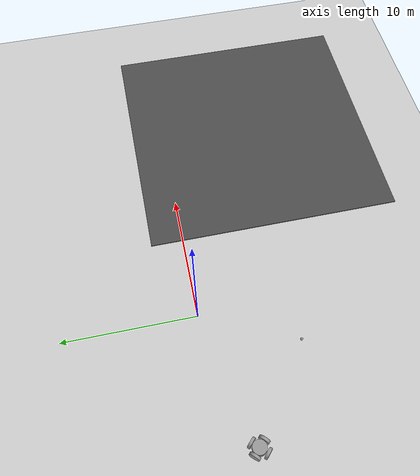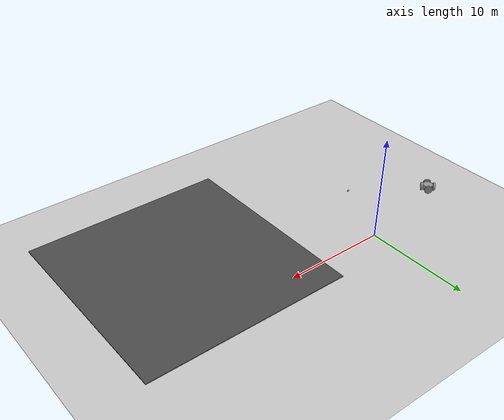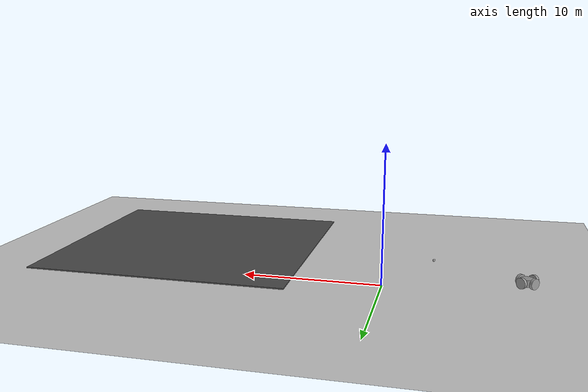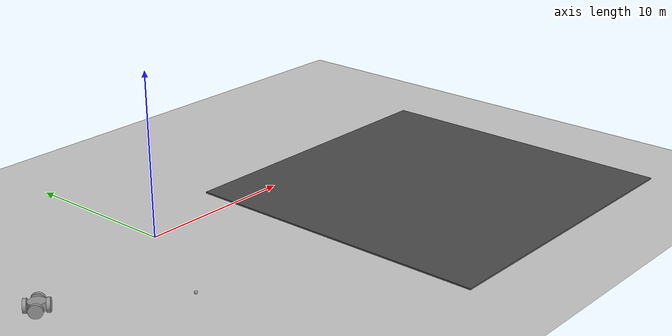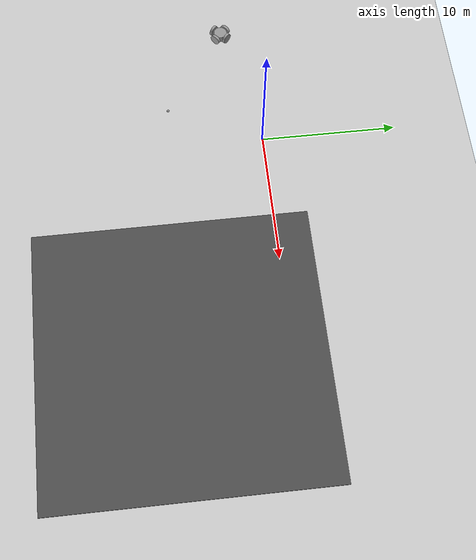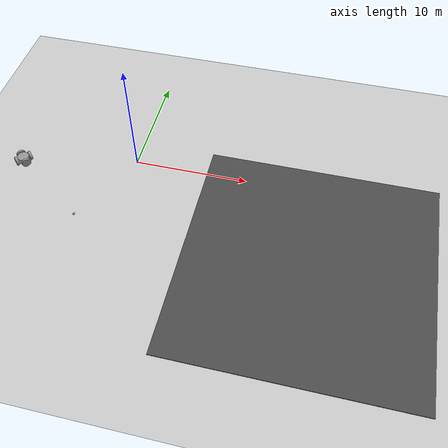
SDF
<sdf version="1.6">
 <world name="default">
  <model name="ground_plane">
   <static>1</static>
   <link name="link">
    <collision name="collision">
     <geometry><plane><normal>0 0 1</normal><size>100 100</size></plane></geometry>
     <surface>
      <contact><collide_bitmask>65535</collide_bitmask></contact>
      <friction><ode><mu>100</mu><mu2>50</mu2></ode></friction>
     </surface>
    </collision>
    <visual name="visual">
     <cast_shadows>0</cast_shadows>
     <geometry><plane><normal>0 0 1</normal><size>100 100</size></plane></geometry>
     <material>
      <script><uri>file://media/materials/scripts/gazebo.material</uri><name>Gazebo/Grey</name></script>
     </material>
    </visual>
   </link>
  </model>
  <model name="4WheelsRbt_clone_clone">
   <link name="link_0">
    <pose>0.010622 0.000366 -0.16 0 -0 0</pose>
    <inertial>
     <mass>1</mass>
     <inertia><ixx>0.145833</ixx><ixy>0</ixy><ixz>0</ixz><iyy>0.145833</iyy><iyz>0</iyz><izz>0.125</izz></inertia>
    </inertial>
    <visual name="visual">
     <pose>0 0 0.2 0 -0 0</pose>
     <geometry><cylinder><radius>0.5</radius><length>0.5</length></cylinder></geometry>
     <material>
      <lighting>1</lighting>
      <script><uri>file://media/materials/scripts/gazebo.material</uri><name>Gazebo/Grey</name></script>
      <shader type="pixel"><normal_map>__default__</normal_map></shader>
      <ambient>0.3 0.3 0.3 1</ambient>
      <diffuse>0.7 0.7 0.7 1</diffuse>
      <specular>0.01 0.01 0.01 1</specular>
      <emissive>0 0 0 1</emissive>
     </material>
    </visual>
    <collision name="collision">
     <pose>0 0 0.2 0 -0 0</pose>
     <geometry><cylinder><radius>0.5</radius><length>0.5</length></cylinder></geometry>
     <surface>
      <friction>
       <ode><mu>1</mu><mu2>1</mu2><fdir1>0 0 0</fdir1><slip1>0</slip1><slip2>0</slip2></ode>
       <torsional>
        <coefficient>1</coefficient>
        <patch_radius>0</patch_radius>
        <surface_radius>0</surface_radius>
        <use_patch_radius>1</use_patch_radius>
        <ode><slip>0</slip></ode>
       </torsional>
      </friction>
      <bounce><restitution_coefficient>0</restitution_coefficient><threshold>1e+06</threshold></bounce>
      <contact>
       <collide_without_contact>0</collide_without_contact>
       <collide_without_contact_bitmask>1</collide_without_contact_bitmask>
       <collide_bitmask>1</collide_bitmask>
       <ode>
        <soft_cfm>0</soft_cfm>
        <soft_erp>0.2</soft_erp>
        <kp>1e+13</kp>
        <kd>1</kd>
        <max_vel>0.01</max_vel>
        <min_depth>0</min_depth>
       </ode>
       <bullet>
        <split_impulse>1</split_impulse>
        <split_impulse_penetration_threshold>-0.01</split_impulse_penetration_threshold>
        <soft_cfm>0</soft_cfm>
        <soft_erp>0.2</soft_erp>
        <kp>1e+13</kp>
        <kd>1</kd>
       </bullet>
      </contact>
     </surface>
    </collision>
   </link>
   <link name="link_2">
    <pose>0.001015 -0.605252 0.04 0 -0 3.12762</pose>
    <inertial>
     <mass>1</mass>
     <inertia><ixx>0.145833</ixx><ixy>0</ixy><ixz>0</ixz><iyy>0.145833</iyy><iyz>0</iyz><izz>0.125</izz></inertia>
    </inertial>
    <visual name="visual">
     <pose>0 0 0 1.5707 -0 0</pose>
     <geometry><cylinder><radius>0.4</radius><length>0.2</length></cylinder></geometry>
     <material>
      <lighting>1</lighting>
      <script><uri>file://media/materials/scripts/gazebo.material</uri><name>Gazebo/Grey</name></script>
      <shader type="pixel"><normal_map>__default__</normal_map></shader>
      <ambient>0.3 0.3 0.3 1</ambient>
      <diffuse>0.7 0.7 0.7 1</diffuse>
      <specular>0.01 0.01 0.01 1</specular>
      <emissive>0 0 0 1</emissive>
     </material>
    </visual>
    <collision name="collision">
     <pose>0 0 0 1.5707 -0 0</pose>
     <geometry><cylinder><radius>0.4</radius><length>0.2</length></cylinder></geometry>
     <surface>
      <friction>
       <ode><mu>1</mu><mu2>1</mu2><fdir1>0 0 0</fdir1><slip1>0</slip1><slip2>0</slip2></ode>
       <torsional>
        <coefficient>1</coefficient>
        <patch_radius>0</patch_radius>
        <surface_radius>0</surface_radius>
        <use_patch_radius>1</use_patch_radius>
        <ode><slip>0</slip></ode>
       </torsional>
      </friction>
      <bounce><restitution_coefficient>0</restitution_coefficient><threshold>1e+06</threshold></bounce>
      <contact>
       <collide_without_contact>0</collide_without_contact>
       <collide_without_contact_bitmask>1</collide_without_contact_bitmask>
       <collide_bitmask>1</collide_bitmask>
       <ode>
        <soft_cfm>0</soft_cfm>
        <soft_erp>0.2</soft_erp>
        <kp>1e+13</kp>
        <kd>1</kd>
        <max_vel>0.01</max_vel>
        <min_depth>0</min_depth>
       </ode>
       <bullet>
        <split_impulse>1</split_impulse>
        <split_impulse_penetration_threshold>-0.01</split_impulse_penetration_threshold>
        <soft_cfm>0</soft_cfm>
        <soft_erp>0.2</soft_erp>
        <kp>1e+13</kp>
        <kd>1</kd>
       </bullet>
      </contact>
     </surface>
    </collision>
   </link>
   <link name="link_2_clone">
    <pose>-0.639114 0.000366 0.04 0 -0 1.58369</pose>
    <inertial>
     <mass>1</mass>
     <inertia><ixx>0.145833</ixx><ixy>0</ixy><ixz>0</ixz><iyy>0.145833</iyy><iyz>0</iyz><izz>0.125</izz></inertia>
    </inertial>
    <visual name="visual">
     <pose>0 0 0 1.5707 -0 0</pose>
     <geometry><cylinder><radius>0.4</radius><length>0.2</length></cylinder></geometry>
     <material>
      <lighting>1</lighting>
      <script><uri>file://media/materials/scripts/gazebo.material</uri><name>Gazebo/Grey</name></script>
      <shader type="pixel"><normal_map>__default__</normal_map></shader>
      <ambient>0.3 0.3 0.3 1</ambient>
      <diffuse>0.7 0.7 0.7 1</diffuse>
      <specular>0.01 0.01 0.01 1</specular>
      <emissive>0 0 0 1</emissive>
     </material>
    </visual>
    <collision name="collision">
     <pose>0 0 0 1.5707 -0 0</pose>
     <geometry><cylinder><radius>0.4</radius><length>0.2</length></cylinder></geometry>
     <surface>
      <friction>
       <ode><mu>1</mu><mu2>1</mu2><fdir1>0 0 0</fdir1><slip1>0</slip1><slip2>0</slip2></ode>
       <torsional>
        <coefficient>1</coefficient>
        <patch_radius>0</patch_radius>
        <surface_radius>0</surface_radius>
        <use_patch_radius>1</use_patch_radius>
        <ode><slip>0</slip></ode>
       </torsional>
      </friction>
      <bounce><restitution_coefficient>0</restitution_coefficient><threshold>1e+06</threshold></bounce>
      <contact>
       <collide_without_contact>0</collide_without_contact>
       <collide_without_contact_bitmask>1</collide_without_contact_bitmask>
       <collide_bitmask>1</collide_bitmask>
       <ode>
        <soft_cfm>0</soft_cfm>
        <soft_erp>0.2</soft_erp>
        <kp>1e+13</kp>
        <kd>1</kd>
        <max_vel>0.01</max_vel>
        <min_depth>0</min_depth>
       </ode>
       <bullet>
        <split_impulse>1</split_impulse>
        <split_impulse_penetration_threshold>-0.01</split_impulse_penetration_threshold>
        <soft_cfm>0</soft_cfm>
        <soft_erp>0.2</soft_erp>
        <kp>1e+13</kp>
        <kd>1</kd>
       </bullet>
      </contact>
     </surface>
    </collision>
   </link>
   <link name="link_2_clone_0">
    <pose>0.010622 0.604213 0.04 0 0 -0.009529</pose>
    <inertial>
     <mass>1</mass>
     <inertia><ixx>0.145833</ixx><ixy>0</ixy><ixz>0</ixz><iyy>0.145833</iyy><iyz>0</iyz><izz>0.125</izz></inertia>
    </inertial>
    <visual name="visual">
     <pose>0 0 0 1.5707 -0 0</pose>
     <geometry><cylinder><radius>0.4</radius><length>0.2</length></cylinder></geometry>
     <material>
      <lighting>1</lighting>
      <script><uri>file://media/materials/scripts/gazebo.material</uri><name>Gazebo/Grey</name></script>
      <shader type="pixel"><normal_map>__default__</normal_map></shader>
      <ambient>0.3 0.3 0.3 1</ambient>
      <diffuse>0.7 0.7 0.7 1</diffuse>
      <specular>0.01 0.01 0.01 1</specular>
      <emissive>0 0 0 1</emissive>
     </material>
    </visual>
    <collision name="collision">
     <pose>0 0 0 1.5707 -0 0</pose>
     <geometry><cylinder><radius>0.4</radius><length>0.2</length></cylinder></geometry>
     <surface>
      <friction>
       <ode><mu>1</mu><mu2>1</mu2><fdir1>0 0 0</fdir1><slip1>0</slip1><slip2>0</slip2></ode>
       <torsional>
        <coefficient>1</coefficient>
        <patch_radius>0</patch_radius>
        <surface_radius>0</surface_radius>
        <use_patch_radius>1</use_patch_radius>
        <ode><slip>0</slip></ode>
       </torsional>
      </friction>
      <bounce><restitution_coefficient>0</restitution_coefficient><threshold>1e+06</threshold></bounce>
      <contact>
       <collide_without_contact>0</collide_without_contact>
       <collide_without_contact_bitmask>1</collide_without_contact_bitmask>
       <collide_bitmask>1</collide_bitmask>
       <ode>
        <soft_cfm>0</soft_cfm>
        <soft_erp>0.2</soft_erp>
        <kp>1e+13</kp>
        <kd>1</kd>
        <max_vel>0.01</max_vel>
        <min_depth>0</min_depth>
       </ode>
       <bullet>
        <split_impulse>1</split_impulse>
        <split_impulse_penetration_threshold>-0.01</split_impulse_penetration_threshold>
        <soft_cfm>0</soft_cfm>
        <soft_erp>0.2</soft_erp>
        <kp>1e+13</kp>
        <kd>1</kd>
       </bullet>
      </contact>
     </surface>
    </collision>
   </link>
   <link name="link_2_clone_1">
    <pose>0.616862 0.000366 0.04 0 0 -1.58633</pose>
    <inertial>
     <mass>1</mass>
     <inertia><ixx>0.145833</ixx><ixy>0</ixy><ixz>0</ixz><iyy>0.145833</iyy><iyz>0</iyz><izz>0.125</izz></inertia>
    </inertial>
    <visual name="visual">
     <pose>0 0 0 1.5707 -0 0</pose>
     <geometry><cylinder><radius>0.4</radius><length>0.2</length></cylinder></geometry>
     <material>
      <lighting>1</lighting>
      <script><uri>file://media/materials/scripts/gazebo.material</uri><name>Gazebo/Grey</name></script>
      <shader type="pixel"><normal_map>__default__</normal_map></shader>
      <ambient>0.3 0.3 0.3 1</ambient>
      <diffuse>0.7 0.7 0.7 1</diffuse>
      <specular>0.01 0.01 0.01 1</specular>
      <emissive>0 0 0 1</emissive>
     </material>
    </visual>
    <collision name="collision">
     <pose>0 0 0 1.5707 -0 0</pose>
     <geometry><cylinder><radius>0.4</radius><length>0.2</length></cylinder></geometry>
     <surface>
      <friction>
       <ode><mu>1</mu><mu2>1</mu2><fdir1>0 0 0</fdir1><slip1>0</slip1><slip2>0</slip2></ode>
       <torsional>
        <coefficient>1</coefficient>
        <patch_radius>0</patch_radius>
        <surface_radius>0</surface_radius>
        <use_patch_radius>1</use_patch_radius>
        <ode><slip>0</slip></ode>
       </torsional>
      </friction>
      <bounce><restitution_coefficient>0</restitution_coefficient><threshold>1e+06</threshold></bounce>
      <contact>
       <collide_without_contact>0</collide_without_contact>
       <collide_without_contact_bitmask>1</collide_without_contact_bitmask>
       <collide_bitmask>1</collide_bitmask>
       <ode>
        <soft_cfm>0</soft_cfm>
        <soft_erp>0.2</soft_erp>
        <kp>1e+13</kp>
        <kd>1</kd>
        <max_vel>0.01</max_vel>
        <min_depth>0</min_depth>
       </ode>
       <bullet>
        <split_impulse>1</split_impulse>
        <split_impulse_penetration_threshold>-0.01</split_impulse_penetration_threshold>
        <soft_cfm>0</soft_cfm>
        <soft_erp>0.2</soft_erp>
        <kp>1e+13</kp>
        <kd>1</kd>
       </bullet>
      </contact>
     </surface>
    </collision>
   </link>
   <joint name="link_0_JOINT_0" type="revolute">
    <parent>link_0</parent>
    <child>link_2</child>
    <axis>
     <xyz>0 1 0</xyz>
     <use_parent_model_frame>0</use_parent_model_frame>
     <limit>
      <lower>-1.79769e+308</lower>
      <upper>1.79769e+308</upper>
      <effort>-1</effort>
      <velocity>-1</velocity>
     </limit>
     <dynamics>
      <spring_reference>0</spring_reference>
      <spring_stiffness>0</spring_stiffness>
      <damping>0</damping>
      <friction>0</friction>
     </dynamics>
    </axis>
    <physics>
     <ode><limit><cfm>0</cfm><erp>0.2</erp></limit><suspension><cfm>0</cfm><erp>0.2</erp></suspension></ode>
    </physics>
   </joint>
   <joint name="link_0_JOINT_2" type="revolute">
    <parent>link_0</parent>
    <child>link_2_clone_0</child>
    <axis>
     <xyz>0 1 0</xyz>
     <use_parent_model_frame>0</use_parent_model_frame>
     <limit>
      <lower>-1.79769e+308</lower>
      <upper>1.79769e+308</upper>
      <effort>-1</effort>
      <velocity>-1</velocity>
     </limit>
     <dynamics>
      <spring_reference>0</spring_reference>
      <spring_stiffness>0</spring_stiffness>
      <damping>0</damping>
     </dynamics>
    </axis>
    <physics>
     <ode><limit><cfm>0</cfm><erp>0.2</erp></limit><suspension><cfm>0</cfm><erp>0.2</erp></suspension></ode>
    </physics>
   </joint>
   <joint name="link_0_JOINT_3" type="revolute">
    <parent>link_0</parent>
    <child>link_2_clone_1</child>
    <axis>
     <xyz>0 1 0</xyz>
     <use_parent_model_frame>0</use_parent_model_frame>
     <limit>
      <lower>-1.79769e+308</lower>
      <upper>1.79769e+308</upper>
      <effort>-1</effort>
      <velocity>-1</velocity>
     </limit>
     <dynamics>
      <spring_reference>0</spring_reference>
      <spring_stiffness>0</spring_stiffness>
      <damping>0</damping>
     </dynamics>
    </axis>
    <physics>
     <ode><limit><cfm>0</cfm><erp>0.2</erp></limit><suspension><cfm>0</cfm><erp>0.2</erp></suspension></ode>
    </physics>
   </joint>
   <joint name="link_2_clone_JOINT_1" type="revolute">
    <parent>link_0</parent>
    <child>link_2_clone</child>
    <axis>
     <xyz>0 1 0</xyz>
     <use_parent_model_frame>0</use_parent_model_frame>
     <limit>
      <lower>-1.79769e+308</lower>
      <upper>1.79769e+308</upper>
      <effort>-1</effort>
      <velocity>-1</velocity>
     </limit>
     <dynamics>
      <spring_reference>0</spring_reference>
      <spring_stiffness>0</spring_stiffness>
      <damping>0</damping>
      <friction>0</friction>
     </dynamics>
    </axis>
    <physics>
     <ode><limit><cfm>0</cfm><erp>0.2</erp></limit><suspension><cfm>0</cfm><erp>0.2</erp></suspension></ode>
    </physics>
   </joint>
   <static>0</static>
   <pose>-9.87141 -2.18788 0.360005 -1e-06 3e-06 0.8205</pose>
  </model>
  <model name="asphalt_plane">
   <static>1</static>
   <link name="link">
    <collision name="collision"><geometry><box><size>20 20 0.1</size></box></geometry></collision>
    <visual name="visual">
     <cast_shadows>0</cast_shadows>
     <geometry><box><size>20 20 0.1</size></box></geometry>
     <material>
      <script>
       <uri>model://asphalt_plane/materials/scripts</uri>
       <uri>model://asphalt_plane/materials/textures</uri>
       <name>vrc/asphalt</name>
      </script>
     </material>
    </visual>
   </link>
   <pose>16.4677 -7.52168 0 0 -0 0</pose>
  </model>
  <model name="my_ball">
   <link name="link_0">
    <inertial>
     <mass>1</mass>
     <inertia><ixx>0.1</ixx><ixy>0</ixy><ixz>0</ixz><iyy>0.1</iyy><iyz>0</iyz><izz>0.1</izz></inertia>
    </inertial>
    <visual name="visual">
     <geometry><sphere><radius>0.1</radius></sphere></geometry>
     <material>
      <lighting>1</lighting>
      <script><uri>file://media/materials/scripts/gazebo.material</uri><name>Gazebo/Grey</name></script>
      <shader type="pixel"><normal_map>__default__</normal_map></shader>
      <ambient>1 1 1 1</ambient>
      <diffuse>1 1 1 1</diffuse>
      <specular>1 1 1 1</specular>
      <emissive>1 1 1 1</emissive>
     </material>
    </visual>
    <collision name="collision">
     <geometry><sphere><radius>0.1</radius></sphere></geometry>
     <surface>
      <friction>
       <ode><mu>1</mu><mu2>1</mu2><fdir1>0 0 0</fdir1><slip1>0</slip1><slip2>0</slip2></ode>
       <torsional>
        <coefficient>1</coefficient>
        <patch_radius>0</patch_radius>
        <surface_radius>0</surface_radius>
        <use_patch_radius>1</use_patch_radius>
        <ode><slip>0</slip></ode>
       </torsional>
      </friction>
      <bounce><restitution_coefficient>0</restitution_coefficient><threshold>1e+06</threshold></bounce>
      <contact>
       <collide_without_contact>0</collide_without_contact>
       <collide_without_contact_bitmask>1</collide_without_contact_bitmask>
       <collide_bitmask>1</collide_bitmask>
       <ode>
        <soft_cfm>0</soft_cfm>
        <soft_erp>0.2</soft_erp>
        <kp>1e+13</kp>
        <kd>1</kd>
        <max_vel>0.01</max_vel>
        <min_depth>0</min_depth>
       </ode>
       <bullet>
        <split_impulse>1</split_impulse>
        <split_impulse_penetration_threshold>-0.01</split_impulse_penetration_threshold>
        <soft_cfm>0</soft_cfm>
        <soft_erp>0.2</soft_erp>
        <kp>1e+13</kp>
        <kd>1</kd>
       </bullet>
      </contact>
     </surface>
    </collision>
   </link>
   <static>0</static>
   <pose>-3.27712 -6.87452 0.1 0 -0 0</pose>
  </model>
 </world>
</sdf>
